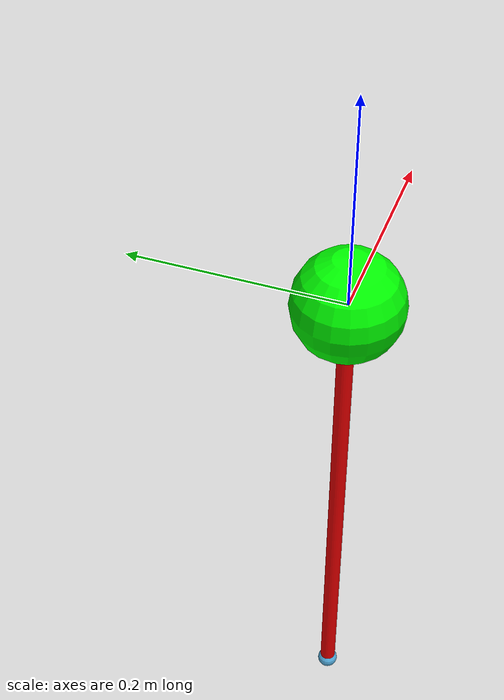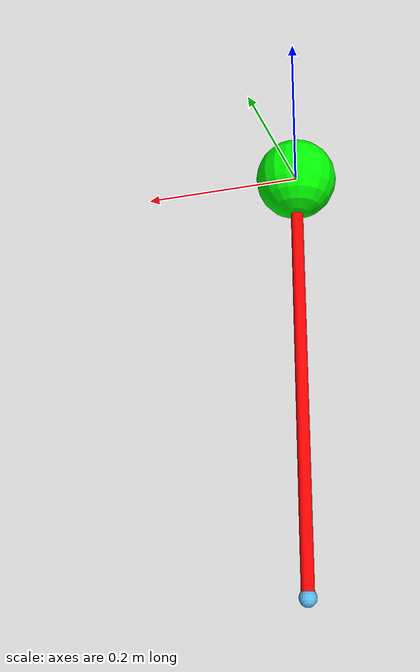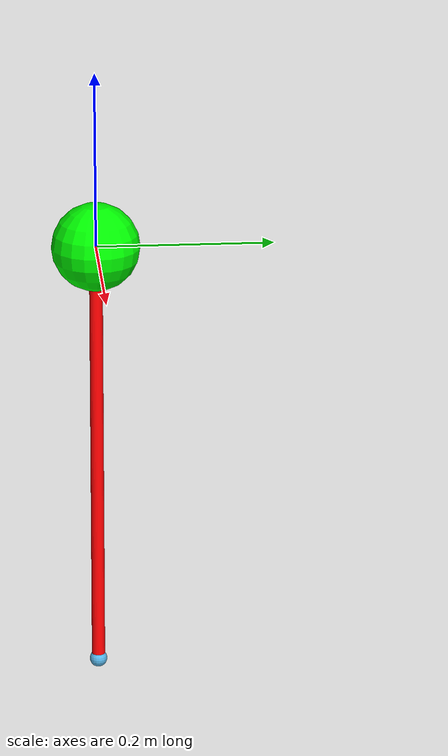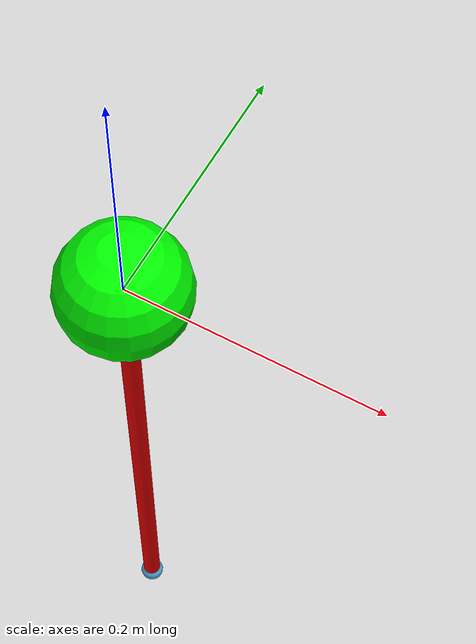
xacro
<?xml version="1.0"?>

<robot name="CompassGait" xmlns:xacro="http://ros.org/wiki/xacro">

  <xacro:property name="mh" value="10" />
  <xacro:property name="m" value="2.5" />
  <xacro:property name="a" value=".5" />

  <xacro:macro name="leg" params="lr cname color">
    <link name="${lr}_leg">
      <inertial>
	<origin  xyz = "0 0 ${-(a)/2}"/>
	<mass value = "${m}"/>
	<inertia ixx="0.01"  ixy="0"  ixz="0" iyy="0.01" iyz="0" izz="0.01" />
      </inertial>
      <visual>
      	<origin xyz="0 0 ${-(a)/2}" />
	      <geometry>
	        <cylinder radius="0.0075" length="${a}"/>
      	</geometry>
        <material name="${cname}">
          <color rgba="${color}" />
        </material>
      </visual>
      <collision>
	      <origin xyz="0 0 ${-a}" />
	      <geometry>
	        <sphere radius="0.01"/>
	      </geometry>
      </collision>
    </link>

  </xacro:macro>

  <link name="hip">
    <inertial>
      <origin  xyz = "0.0 0.00 0"/>
      <mass value="${mh}" />
      <inertia ixx="0.01"  ixy="0"  ixz="0" iyy="0.01" iyz="0" izz="0.01" />
    </inertial>
    <visual>
      <geometry>
        <sphere radius="${.005*mh}" />
      </geometry>
      <material name="green">
        <color rgba="0 1 0 1" />
      </material>
    </visual>
  </link>

<link name="left_foot">
      <inertial>
	<origin  xyz = "0 0 ${-(a)}"/>
	<mass value = "${m}"/>
	<inertia ixx="0.01"  ixy="0"  ixz="0" iyy="0.01" iyz="0" izz="0.01" />
      </inertial>
      <visual>
      	<origin xyz="0 0 ${-(a)}" />
	      <geometry>
	        <sphere radius="0.01"/>
      	</geometry>
      </visual>
      <collision>
	      <origin xyz="0 0 ${-a}" />
	      <geometry>
	        <sphere radius="0.01"/>
	      </geometry>
      </collision>
</link>

<link name="right_foot">
      <inertial>
	<origin  xyz = "0 0 0"/>
	<mass value = "${m}"/>
	<inertia ixx="0.01"  ixy="0"  ixz="0" iyy="0.01" iyz="0" izz="0.01" />
      </inertial>
      <visual>
      	<origin xyz="0 0 0" />
	      <geometry>
	        <sphere radius="0.01"/>
      	</geometry>
      </visual>
      <collision>
	      <origin xyz="0 0 0" />
	      <geometry>
	        <sphere radius="0.01"/>
	      </geometry>
      </collision>
</link>

  <joint name="right_foot_joint" type="fixed">
    <parent link="right_leg" />
    <child link="right_foot" />
  </joint>

  <joint name="left_foot_joint" type="fixed">
    <parent link="hip" />
    <child link="left_foot" />
  </joint>

  <xacro:leg lr="left" cname="red" color="1 0 0 1" />
  <xacro:leg lr="right"  cname="blue" color="0 0 1 1" />

  <joint name="left_leg_weld" type="fixed">
    <parent link="hip" />
    <child link="left_leg" />
  </joint>

  <joint name="hip_pin" type="continuous">
    <parent link="hip" />
    <child link="right_leg" />
    <axis xyz="0 1 0"/>
  </joint>

  <transmission type="SimpleTransmission" name="hip_trans">
    <actuator name="hip_torque" />
    <joint name="hip_pin" />
    <mechanicalReduction>1</mechanicalReduction>
  </transmission>

<gazebo>
    <!-- robot model offset -->
    <pose>0 0 1 0 0 0</pose>
  </gazebo>
  <gazebo>
    <plugin filename="libjoint_actuation_plugin.so" name="joint_torque_controller">
      <alwaysOn>true</alwaysOn>
      <topicName>actuator_cmd</topicName>
    </plugin>
    <plugin filename="libgazebo_ros_pub_robot_state.so" name="gazebo_ros_pub_robot_controller">
      <alwaysOn>true</alwaysOn>
      <updateRate>100.0</updateRate>
      <topicName>true_robot_state</topicName>
    </plugin>
  </gazebo>

</robot>
